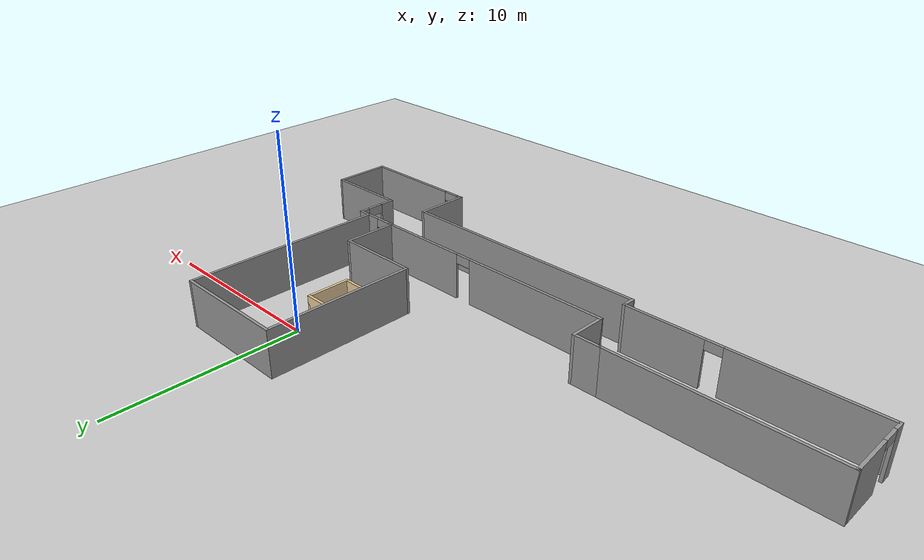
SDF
<sdf version="1.7">
 <world name="default">
  <light name="sun" type="directional">
   <pose>0 0 10 0 -0 0</pose>
   <diffuse>0.8 0.8 0.8 1</diffuse>
   <specular>0.2 0.2 0.2 1</specular>
   <attenuation>
    <range>1000</range>
    <constant>0.9</constant>
    <linear>0.01</linear>
    <quadratic>0.001</quadratic>
   </attenuation>
   <direction>-0.5 0.1 -0.9</direction>
   <spot><inner_angle>0</inner_angle><outer_angle>0</outer_angle><falloff>0</falloff></spot>
  </light>
  <model name="ground_plane">
   <static>1</static>
   <link name="link">
    <collision name="collision">
     <geometry><plane><normal>0 0 1</normal><size>100 100</size></plane></geometry>
     <surface><friction><ode><mu>100</mu><mu2>50</mu2></ode></friction></surface>
    </collision>
    <visual name="visual">
     <cast_shadows>0</cast_shadows>
     <geometry><plane><normal>0 0 1</normal><size>100 100</size></plane></geometry>
     <material>
      <script><uri>file://media/materials/scripts/gazebo.material</uri><name>Gazebo/Grey</name></script>
     </material>
    </visual>
   </link>
  </model>
  <gravity>0 0 -9.8</gravity>
  <magnetic_field>6e-06 2.3e-05 -4.2e-05</magnetic_field>
  <atmosphere type="adiabatic"/>
  <physics type="ode">
   <max_step_size>0.001</max_step_size>
   <real_time_factor>1</real_time_factor>
   <real_time_update_rate>1000</real_time_update_rate>
  </physics>
  <scene><ambient>0.4 0.4 0.4 1</ambient><background>0.7 0.7 0.7 1</background><shadows>1</shadows></scene>
  <audio><device>default</device></audio>
  <spherical_coordinates>
   <surface_model>EARTH_WGS84</surface_model>
   <latitude_deg>0</latitude_deg>
   <longitude_deg>0</longitude_deg>
   <elevation>0</elevation>
   <heading_deg>0</heading_deg>
  </spherical_coordinates>
  <model name="4th_floor">
   <pose>-7.63001 -4.92272 0 0 -0 0</pose>
   <link name="Wall_0">
    <collision name="Wall_0_Collision">
     <geometry><box><size>4.5 0.15 2.5</size></box></geometry>
     <pose>0 0 1.25 0 -0 0</pose>
    </collision>
    <visual name="Wall_0_Visual">
     <pose>0 0 1.25 0 -0 0</pose>
     <geometry><box><size>4.5 0.15 2.5</size></box></geometry>
     <material>
      <script><uri>file://media/materials/scripts/gazebo.material</uri><name>Gazebo/Grey</name></script>
      <ambient>1 1 1 1</ambient>
     </material>
     <meta><layer>0</layer></meta>
    </visual>
    <pose>7.425 0.025 0 0 -0 3.14159</pose>
   </link>
   <link name="Wall_11">
    <collision name="Wall_11_Collision">
     <geometry><box><size>0.75 0.15 2.5</size></box></geometry>
     <pose>0 0 1.25 0 -0 0</pose>
    </collision>
    <visual name="Wall_11_Visual">
     <pose>0 0 1.25 0 -0 0</pose>
     <geometry><box><size>0.75 0.15 2.5</size></box></geometry>
     <material>
      <script><uri>file://media/materials/scripts/gazebo.material</uri><name>Gazebo/Grey</name></script>
      <ambient>1 1 1 1</ambient>
     </material>
     <meta><layer>0</layer></meta>
    </visual>
    <pose>11.75 -2.825 0 0 -0 0</pose>
   </link>
   <link name="Wall_12">
    <pose>12.05 -3.875 0 0 -0 -1.5708</pose>
    <visual name="Wall_12_Visual_0">
     <pose>-0.853738 0 1.25 0 -0 0</pose>
     <geometry><box><size>0.542523 0.15 2.5</size></box></geometry>
     <material>
      <script><uri>file://media/materials/scripts/gazebo.material</uri><name>Gazebo/Grey</name></script>
      <ambient>1 1 1 1</ambient>
     </material>
     <meta><layer>0</layer></meta>
    </visual>
    <collision name="Wall_12_Collision_0">
     <geometry><box><size>0.542523 0.15 2.5</size></box></geometry>
     <pose>-0.853738 0 1.25 0 -0 0</pose>
    </collision>
    <visual name="Wall_12_Visual_1">
     <pose>0.721262 0 1.25 0 -0 0</pose>
     <geometry><box><size>0.807477 0.15 2.5</size></box></geometry>
     <material>
      <script><uri>file://media/materials/scripts/gazebo.material</uri><name>Gazebo/Grey</name></script>
      <ambient>1 1 1 1</ambient>
     </material>
     <meta><layer>0</layer></meta>
    </visual>
    <collision name="Wall_12_Collision_1">
     <geometry><box><size>0.807477 0.15 2.5</size></box></geometry>
     <pose>0.721262 0 1.25 0 -0 0</pose>
    </collision>
    <visual name="Wall_12_Visual_2">
     <pose>-0.132477 0 2.25 0 -0 0</pose>
     <geometry><box><size>0.9 0.15 0.5</size></box></geometry>
     <material>
      <script><uri>file://media/materials/scripts/gazebo.material</uri><name>Gazebo/Grey</name></script>
      <ambient>1 1 1 1</ambient>
     </material>
     <meta><layer>0</layer></meta>
    </visual>
    <collision name="Wall_12_Collision_2">
     <geometry><box><size>0.9 0.15 0.5</size></box></geometry>
     <pose>-0.132477 0 2.25 0 -0 0</pose>
    </collision>
   </link>
   <link name="Wall_13">
    <collision name="Wall_13_Collision">
     <geometry><box><size>4.5 0.15 2.5</size></box></geometry>
     <pose>0 0 1.25 0 -0 0</pose>
    </collision>
    <visual name="Wall_13_Visual">
     <pose>0 0 1.25 0 -0 0</pose>
     <geometry><box><size>4.5 0.15 2.5</size></box></geometry>
     <material>
      <script><uri>file://media/materials/scripts/gazebo.material</uri><name>Gazebo/Grey</name></script>
      <ambient>1 1 1 1</ambient>
     </material>
     <meta><layer>0</layer></meta>
    </visual>
    <pose>14.225 -4.925 0 0 -0 0</pose>
   </link>
   <link name="Wall_17">
    <collision name="Wall_17_Collision">
     <geometry><box><size>3 0.15 2.5</size></box></geometry>
     <pose>0 0 1.25 0 -0 0</pose>
    </collision>
    <visual name="Wall_17_Visual">
     <pose>0 0 1.25 0 -0 0</pose>
     <geometry><box><size>3 0.15 2.5</size></box></geometry>
     <material>
      <script><uri>file://media/materials/scripts/gazebo.material</uri><name>Gazebo/Grey</name></script>
      <ambient>1 1 1 1</ambient>
     </material>
     <meta><layer>0</layer></meta>
    </visual>
    <pose>9.6 -6.6 0 0 -0 -1.5708</pose>
   </link>
   <link name="Wall_19">
    <collision name="Wall_19_Collision">
     <geometry><box><size>14 0.15 2.5</size></box></geometry>
     <pose>0 0 1.25 0 -0 0</pose>
    </collision>
    <visual name="Wall_19_Visual">
     <pose>0 0 1.25 0 -0 0</pose>
     <geometry><box><size>14 0.15 2.5</size></box></geometry>
     <material>
      <script><uri>file://media/materials/scripts/gazebo.material</uri><name>Gazebo/Grey</name></script>
      <ambient>1 1 1 1</ambient>
     </material>
     <meta><layer>0</layer></meta>
    </visual>
    <pose>2.675 -5.175 0 0 -0 3.14159</pose>
   </link>
   <link name="Wall_2">
    <collision name="Wall_2_Collision">
     <geometry><box><size>3 0.15 2.5</size></box></geometry>
     <pose>0 0 1.25 0 -0 0</pose>
    </collision>
    <visual name="Wall_2_Visual">
     <pose>0 0 1.25 0 -0 0</pose>
     <geometry><box><size>3 0.15 2.5</size></box></geometry>
     <material>
      <script><uri>file://media/materials/scripts/gazebo.material</uri><name>Gazebo/Grey</name></script>
      <ambient>1 1 1 1</ambient>
     </material>
     <meta><layer>0</layer></meta>
    </visual>
    <pose>9.6 -1.4 0 0 -0 -1.5708</pose>
   </link>
   <link name="Wall_22">
    <pose>2.675 -2.825 0 0 -0 3.14159</pose>
    <visual name="Wall_22_Visual_0">
     <pose>-4.4703 0 1.25 0 -0 0</pose>
     <geometry><box><size>5.0594 0.15 2.5</size></box></geometry>
     <material>
      <script><uri>file://media/materials/scripts/gazebo.material</uri><name>Gazebo/Grey</name></script>
      <ambient>1 1 1 1</ambient>
     </material>
     <meta><layer>0</layer></meta>
    </visual>
    <collision name="Wall_22_Collision_0">
     <geometry><box><size>5.0594 0.15 2.5</size></box></geometry>
     <pose>-4.4703 0 1.25 0 -0 0</pose>
    </collision>
    <visual name="Wall_22_Visual_1">
     <pose>2.9797 0 1.25 0 -0 0</pose>
     <geometry><box><size>8.04059 0.15 2.5</size></box></geometry>
     <material>
      <script><uri>file://media/materials/scripts/gazebo.material</uri><name>Gazebo/Grey</name></script>
      <ambient>1 1 1 1</ambient>
     </material>
     <meta><layer>0</layer></meta>
    </visual>
    <collision name="Wall_22_Collision_1">
     <geometry><box><size>8.04059 0.15 2.5</size></box></geometry>
     <pose>2.9797 0 1.25 0 -0 0</pose>
    </collision>
    <visual name="Wall_22_Visual_2">
     <pose>-1.49059 0 2.25 0 -0 0</pose>
     <geometry><box><size>0.9 0.15 0.5</size></box></geometry>
     <material>
      <script><uri>file://media/materials/scripts/gazebo.material</uri><name>Gazebo/Grey</name></script>
      <ambient>1 1 1 1</ambient>
     </material>
     <meta><layer>0</layer></meta>
    </visual>
    <collision name="Wall_22_Collision_2">
     <geometry><box><size>0.9 0.15 0.5</size></box></geometry>
     <pose>-1.49059 0 2.25 0 -0 0</pose>
    </collision>
   </link>
   <link name="Wall_23">
    <collision name="Wall_23_Collision">
     <geometry><box><size>2 0.15 2.5</size></box></geometry>
     <pose>0 0 1.25 0 -0 0</pose>
    </collision>
    <visual name="Wall_23_Visual">
     <pose>0 0 1.25 0 -0 0</pose>
     <geometry><box><size>2 0.15 2.5</size></box></geometry>
     <material>
      <script><uri>file://media/materials/scripts/gazebo.material</uri><name>Gazebo/Grey</name></script>
      <ambient>1 1 1 1</ambient>
     </material>
     <meta><layer>0</layer></meta>
    </visual>
    <pose>-4.25 -1.9 0 0 -0 1.5708</pose>
   </link>
   <link name="Wall_24">
    <collision name="Wall_24_Collision">
     <geometry><box><size>1.5 0.15 2.5</size></box></geometry>
     <pose>0 0 1.25 0 -0 0</pose>
    </collision>
    <visual name="Wall_24_Visual">
     <pose>0 0 1.25 0 -0 0</pose>
     <geometry><box><size>1.5 0.15 2.5</size></box></geometry>
     <material>
      <script><uri>file://media/materials/scripts/gazebo.material</uri><name>Gazebo/Grey</name></script>
      <ambient>1 1 1 1</ambient>
     </material>
     <meta><layer>0</layer></meta>
    </visual>
    <pose>-4.925 -0.975 0 0 -0 3.14159</pose>
   </link>
   <link name="Wall_26">
    <collision name="Wall_26_Collision">
     <geometry><box><size>0.75 0.15 2.5</size></box></geometry>
     <pose>0 0 1.25 0 -0 0</pose>
    </collision>
    <visual name="Wall_26_Visual">
     <pose>0 0 1.25 0 -0 0</pose>
     <geometry><box><size>0.75 0.15 2.5</size></box></geometry>
     <material>
      <script><uri>file://media/materials/scripts/gazebo.material</uri><name>Gazebo/Grey</name></script>
      <ambient>1 1 1 1</ambient>
     </material>
     <meta><layer>0</layer></meta>
    </visual>
    <pose>-4.25 -4.875 0 0 -0 1.5708</pose>
   </link>
   <link name="Wall_28">
    <pose>13.025 -8.025 0 0 -0 0</pose>
    <visual name="Wall_28_Visual_0">
     <pose>-3.3158 0 1.25 0 -0 0</pose>
     <geometry><box><size>0.368398 0.15 2.5</size></box></geometry>
     <material>
      <script><uri>file://media/materials/scripts/gazebo.material</uri><name>Gazebo/Grey</name></script>
      <ambient>1 1 1 1</ambient>
     </material>
     <meta><layer>0</layer></meta>
    </visual>
    <collision name="Wall_28_Collision_0">
     <geometry><box><size>0.368398 0.15 2.5</size></box></geometry>
     <pose>-3.3158 0 1.25 0 -0 0</pose>
    </collision>
    <visual name="Wall_28_Visual_1">
     <pose>0.634199 0 1.25 0 -0 0</pose>
     <geometry><box><size>5.7316 0.15 2.5</size></box></geometry>
     <material>
      <script><uri>file://media/materials/scripts/gazebo.material</uri><name>Gazebo/Grey</name></script>
      <ambient>1 1 1 1</ambient>
     </material>
     <meta><layer>0</layer></meta>
    </visual>
    <collision name="Wall_28_Collision_1">
     <geometry><box><size>5.7316 0.15 2.5</size></box></geometry>
     <pose>0.634199 0 1.25 0 -0 0</pose>
    </collision>
    <visual name="Wall_28_Visual_2">
     <pose>-2.6816 0 2.25 0 -0 0</pose>
     <geometry><box><size>0.9 0.15 0.5</size></box></geometry>
     <material>
      <script><uri>file://media/materials/scripts/gazebo.material</uri><name>Gazebo/Grey</name></script>
      <ambient>1 1 1 1</ambient>
     </material>
     <meta><layer>0</layer></meta>
    </visual>
    <collision name="Wall_28_Collision_2">
     <geometry><box><size>0.9 0.15 0.5</size></box></geometry>
     <pose>-2.6816 0 2.25 0 -0 0</pose>
    </collision>
   </link>
   <link name="Wall_29">
    <collision name="Wall_29_Collision">
     <geometry><box><size>3.25 0.15 2.5</size></box></geometry>
     <pose>0 0 1.25 0 -0 0</pose>
    </collision>
    <visual name="Wall_29_Visual">
     <pose>0 0 1.25 0 -0 0</pose>
     <geometry><box><size>3.25 0.15 2.5</size></box></geometry>
     <material>
      <script><uri>file://media/materials/scripts/gazebo.material</uri><name>Gazebo/Grey</name></script>
      <ambient>1 1 1 1</ambient>
     </material>
     <meta><layer>0</layer></meta>
    </visual>
    <pose>16.45 -6.475 0 0 -0 1.5708</pose>
   </link>
   <link name="Wall_3">
    <pose>10.525 -2.825 0 0 -0 0</pose>
    <visual name="Wall_3_Visual_0">
     <pose>-0.871993 0 1.25 0 -0 0</pose>
     <geometry><box><size>0.256014 0.15 2.5</size></box></geometry>
     <material>
      <script><uri>file://media/materials/scripts/gazebo.material</uri><name>Gazebo/Grey</name></script>
      <ambient>1 1 1 1</ambient>
     </material>
     <meta><layer>0</layer></meta>
    </visual>
    <collision name="Wall_3_Collision_0">
     <geometry><box><size>0.256014 0.15 2.5</size></box></geometry>
     <pose>-0.871993 0 1.25 0 -0 0</pose>
    </collision>
    <visual name="Wall_3_Visual_1">
     <pose>0.578007 0 1.25 0 -0 0</pose>
     <geometry><box><size>0.843986 0.15 2.5</size></box></geometry>
     <material>
      <script><uri>file://media/materials/scripts/gazebo.material</uri><name>Gazebo/Grey</name></script>
      <ambient>1 1 1 1</ambient>
     </material>
     <meta><layer>0</layer></meta>
    </visual>
    <collision name="Wall_3_Collision_1">
     <geometry><box><size>0.843986 0.15 2.5</size></box></geometry>
     <pose>0.578007 0 1.25 0 -0 0</pose>
    </collision>
    <visual name="Wall_3_Visual_2">
     <pose>-0.293986 0 2.25 0 -0 0</pose>
     <geometry><box><size>0.9 0.15 0.5</size></box></geometry>
     <material>
      <script><uri>file://media/materials/scripts/gazebo.material</uri><name>Gazebo/Grey</name></script>
      <ambient>1 1 1 1</ambient>
     </material>
     <meta><layer>0</layer></meta>
    </visual>
    <collision name="Wall_3_Collision_2">
     <geometry><box><size>0.9 0.15 0.5</size></box></geometry>
     <pose>-0.293986 0 2.25 0 -0 0</pose>
    </collision>
   </link>
   <link name="Wall_31">
    <collision name="Wall_31_Collision">
     <geometry><box><size>11 0.15 2.5</size></box></geometry>
     <pose>0 0 1.25 0 -0 0</pose>
    </collision>
    <visual name="Wall_31_Visual">
     <pose>0 0 1.25 0 -0 0</pose>
     <geometry><box><size>11 0.15 2.5</size></box></geometry>
     <material>
      <script><uri>file://media/materials/scripts/gazebo.material</uri><name>Gazebo/Grey</name></script>
      <ambient>1 1 1 1</ambient>
     </material>
     <meta><layer>0</layer></meta>
    </visual>
    <pose>-11.025 -0.975 0 0 -0 3.14159</pose>
   </link>
   <link name="Wall_32">
    <pose>-16.45 -2.775 0 0 -0 -1.5708</pose>
    <visual name="Wall_32_Visual_0">
     <pose>-0.723005 0 1.25 0 -0 0</pose>
     <geometry><box><size>2.30399 0.15 2.5</size></box></geometry>
     <material>
      <script><uri>file://media/materials/scripts/gazebo.material</uri><name>Gazebo/Grey</name></script>
      <ambient>1 1 1 1</ambient>
     </material>
     <meta><layer>0</layer></meta>
    </visual>
    <collision name="Wall_32_Collision_0">
     <geometry><box><size>2.30399 0.15 2.5</size></box></geometry>
     <pose>-0.723005 0 1.25 0 -0 0</pose>
    </collision>
    <visual name="Wall_32_Visual_1">
     <pose>1.602 0 1.25 0 -0 0</pose>
     <geometry><box><size>0.54601 0.15 2.5</size></box></geometry>
     <material>
      <script><uri>file://media/materials/scripts/gazebo.material</uri><name>Gazebo/Grey</name></script>
      <ambient>1 1 1 1</ambient>
     </material>
     <meta><layer>0</layer></meta>
    </visual>
    <collision name="Wall_32_Collision_1">
     <geometry><box><size>0.54601 0.15 2.5</size></box></geometry>
     <pose>1.602 0 1.25 0 -0 0</pose>
    </collision>
    <visual name="Wall_32_Visual_2">
     <pose>0.87899 0 2.25 0 -0 0</pose>
     <geometry><box><size>0.9 0.15 0.5</size></box></geometry>
     <material>
      <script><uri>file://media/materials/scripts/gazebo.material</uri><name>Gazebo/Grey</name></script>
      <ambient>1 1 1 1</ambient>
     </material>
     <meta><layer>0</layer></meta>
    </visual>
    <collision name="Wall_32_Collision_2">
     <geometry><box><size>0.9 0.15 0.5</size></box></geometry>
     <pose>0.87899 0 2.25 0 -0 0</pose>
    </collision>
   </link>
   <link name="Wall_34">
    <pose>-10.3 -4.575 0 0 -0 3.14159</pose>
    <visual name="Wall_34_Visual_0">
     <pose>-4.02188 0 1.25 0 -0 0</pose>
     <geometry><box><size>4.20624 0.15 2.5</size></box></geometry>
     <material>
      <script><uri>file://media/materials/scripts/gazebo.material</uri><name>Gazebo/Grey</name></script>
      <ambient>1 1 1 1</ambient>
     </material>
     <meta><layer>0</layer></meta>
    </visual>
    <collision name="Wall_34_Collision_0">
     <geometry><box><size>4.20624 0.15 2.5</size></box></geometry>
     <pose>-4.02188 0 1.25 0 -0 0</pose>
    </collision>
    <visual name="Wall_34_Visual_1">
     <pose>2.55312 0 1.25 0 -0 0</pose>
     <geometry><box><size>7.14376 0.15 2.5</size></box></geometry>
     <material>
      <script><uri>file://media/materials/scripts/gazebo.material</uri><name>Gazebo/Grey</name></script>
      <ambient>1 1 1 1</ambient>
     </material>
     <meta><layer>0</layer></meta>
    </visual>
    <collision name="Wall_34_Collision_1">
     <geometry><box><size>7.14376 0.15 2.5</size></box></geometry>
     <pose>2.55312 0 1.25 0 -0 0</pose>
    </collision>
    <visual name="Wall_34_Visual_2">
     <pose>-1.46876 0 2.25 0 -0 0</pose>
     <geometry><box><size>0.9 0.15 0.5</size></box></geometry>
     <material>
      <script><uri>file://media/materials/scripts/gazebo.material</uri><name>Gazebo/Grey</name></script>
      <ambient>1 1 1 1</ambient>
     </material>
     <meta><layer>0</layer></meta>
    </visual>
    <collision name="Wall_34_Collision_2">
     <geometry><box><size>0.9 0.15 0.5</size></box></geometry>
     <pose>-1.46876 0 2.25 0 -0 0</pose>
    </collision>
   </link>
   <link name="Wall_36">
    <collision name="Wall_36_Collision">
     <geometry><box><size>2.5 0.15 0.8</size></box></geometry>
     <pose>0 0 0.4 0 -0 0</pose>
    </collision>
    <visual name="Wall_36_Visual">
     <pose>0 0 0.4 0 -0 0</pose>
     <geometry><box><size>2.5 0.15 0.8</size></box></geometry>
     <material>
      <script><uri>file://media/materials/scripts/gazebo.material</uri><name>Gazebo/Grey</name></script>
      <ambient>0.921569 0.807843 0.615686 1</ambient>
     </material>
     <meta><layer>0</layer></meta>
    </visual>
    <pose>8.91354 2.04753 0 0 -0 -1.5708</pose>
   </link>
   <link name="Wall_37">
    <collision name="Wall_37_Collision">
     <geometry><box><size>3 0.15 0.8</size></box></geometry>
     <pose>0 0 0.4 0 -0 0</pose>
    </collision>
    <visual name="Wall_37_Visual">
     <pose>0 0 0.4 0 -0 0</pose>
     <geometry><box><size>3 0.15 0.8</size></box></geometry>
     <material>
      <script><uri>file://media/materials/scripts/gazebo.material</uri><name>Gazebo/Grey</name></script>
      <ambient>0.921569 0.807843 0.615686 1</ambient>
     </material>
     <meta><layer>0</layer></meta>
    </visual>
    <pose>7.48854 0.872531 0 0 -0 3.14159</pose>
   </link>
   <link name="Wall_38">
    <collision name="Wall_38_Collision">
     <geometry><box><size>2.5 0.15 0.8</size></box></geometry>
     <pose>0 0 0.4 0 -0 0</pose>
    </collision>
    <visual name="Wall_38_Visual">
     <pose>0 0 0.4 0 -0 0</pose>
     <geometry><box><size>2.5 0.15 0.8</size></box></geometry>
     <material>
      <script><uri>file://media/materials/scripts/gazebo.material</uri><name>Gazebo/Grey</name></script>
      <ambient>0.921569 0.807843 0.615686 1</ambient>
     </material>
     <meta><layer>0</layer></meta>
    </visual>
    <pose>6.06354 2.04753 0 0 -0 1.5708</pose>
   </link>
   <link name="Wall_39">
    <collision name="Wall_39_Collision">
     <geometry><box><size>3 0.15 0.8</size></box></geometry>
     <pose>0 0 0.4 0 -0 0</pose>
    </collision>
    <visual name="Wall_39_Visual">
     <pose>0 0 0.4 0 -0 0</pose>
     <geometry><box><size>3 0.15 0.8</size></box></geometry>
     <material>
      <script><uri>file://media/materials/scripts/gazebo.material</uri><name>Gazebo/Grey</name></script>
      <ambient>0.921569 0.807843 0.615686 1</ambient>
     </material>
     <meta><layer>0</layer></meta>
    </visual>
    <pose>7.48854 3.22253 0 0 -0 0</pose>
   </link>
   <link name="Wall_4">
    <collision name="Wall_4_Collision">
     <geometry><box><size>11 0.15 2.5</size></box></geometry>
     <pose>0 0 1.25 0 -0 0</pose>
    </collision>
    <visual name="Wall_4_Visual">
     <pose>0 0 1.25 0 -0 0</pose>
     <geometry><box><size>11 0.15 2.5</size></box></geometry>
     <material>
      <script><uri>file://media/materials/scripts/gazebo.material</uri><name>Gazebo/Grey</name></script>
      <ambient>1 1 1 1</ambient>
     </material>
     <meta><layer>0</layer></meta>
    </visual>
    <pose>11.45 2.6 0 0 -0 1.5708</pose>
   </link>
   <link name="Wall_6">
    <collision name="Wall_6_Collision">
     <geometry><box><size>6.35 0.15 2.5</size></box></geometry>
     <pose>0 0 1.25 0 -0 0</pose>
    </collision>
    <visual name="Wall_6_Visual">
     <pose>0 0 1.25 0 -0 0</pose>
     <geometry><box><size>6.35 0.15 2.5</size></box></geometry>
     <material>
      <script><uri>file://media/materials/scripts/gazebo.material</uri><name>Gazebo/Grey</name></script>
      <ambient>1 1 1 1</ambient>
     </material>
     <meta><layer>0</layer></meta>
    </visual>
    <pose>8.35 8.025 0 0 -0 3.14159</pose>
   </link>
   <link name="Wall_9">
    <collision name="Wall_9_Collision">
     <geometry><box><size>8.15 0.15 2.5</size></box></geometry>
     <pose>0 0 1.25 0 -0 0</pose>
    </collision>
    <visual name="Wall_9_Visual">
     <pose>0 0 1.25 0 -0 0</pose>
     <geometry><box><size>8.15 0.15 2.5</size></box></geometry>
     <material>
      <script><uri>file://media/materials/scripts/gazebo.material</uri><name>Gazebo/Grey</name></script>
      <ambient>1 1 1 1</ambient>
     </material>
     <meta><layer>0</layer></meta>
    </visual>
    <pose>5.25 4.025 0 0 -0 1.5708</pose>
   </link>
   <static>1</static>
  </model>
 </world>
</sdf>
